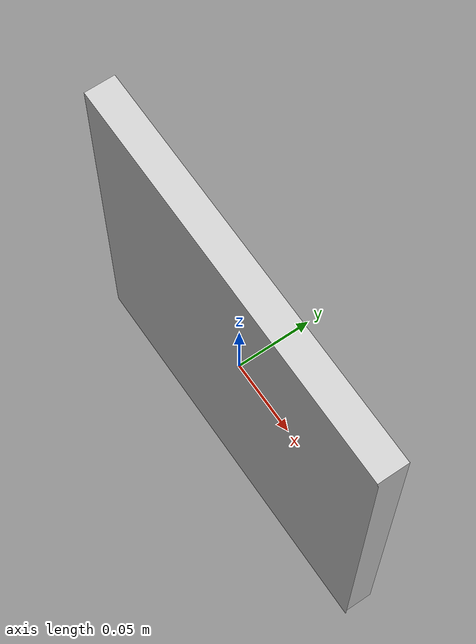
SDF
<?xml version="1.0" ?>
<sdf version="1.6">
  <model name="creeper_150">
    <static>true</static>
    <link name="box">
      <pose>0 0 0 0 0 0</pose>
      <collision name="collision">
        <geometry>
          <mesh>
            <uri>model://pista_s/creepers/creeper_150/materials/textures/caixa.dae</uri>
            <scale>1 1 1</scale>
          </mesh>
        </geometry>
      </collision>
      <visual name='visual'>
        <pose frame=''>0 0 0 0 0 0</pose>
        <geometry>
          <mesh>
            <uri>model://pista_s/creepers/creeper_150/materials/textures/caixa.dae</uri>
            <scale>1 1 1</scale>
          </mesh>
        </geometry>
        <transparency>0</transparency>
        <cast_shadows>1</cast_shadows>
      </visual>
    </link>
  </model>
</sdf>
